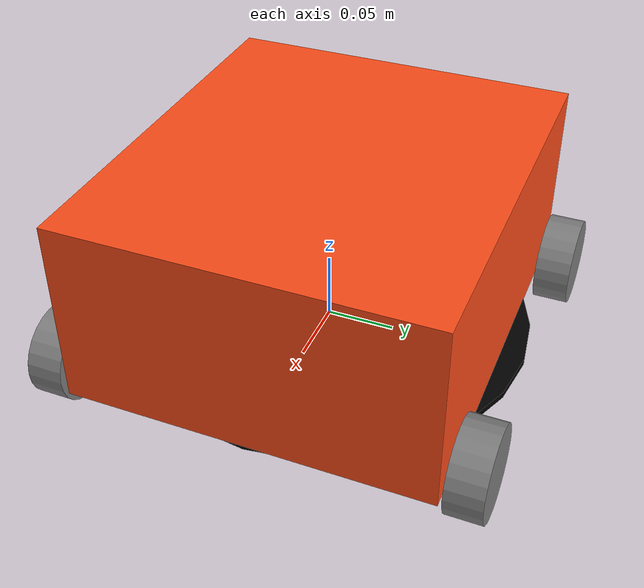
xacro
<?xml version="1.0"?>
<robot xmlns:xacro="http://www.ros.org/wiki/xacro" >

    <xacro:include filename="inertial_macros.xacro"/>
    <xacro:include filename="common_macros.xacro"/>

    <xacro:property name="chassis_length" value="0.300"/>
    <xacro:property name="chassis_width" value="0.265"/>
    <xacro:property name="chassis_height" value="0.138"/>
    <xacro:property name="chassis_mass" value="1.0"/>
    <xacro:property name="wheel_radius" value="0.033"/>
    <xacro:property name="wheel_thickness" value="0.026"/>
    <xacro:property name="wheel_width" value="${wheel_thickness}"/>
    <!-- backward-compatible alias expected by common_macros.xacro -->
    <xacro:property name="wheel_mass" value="0.05"/>
    <xacro:property name="wheel_offset_x" value="0.12"/>
    <xacro:property name="wheel_offset_y" value="0.1485"/>
    <xacro:property name="wheel_offset_z" value="0.01"/>
    <xacro:property name="caster_wheel_radius" value="0.01"/>
    <xacro:property name="caster_wheel_mass" value="0.01"/>
    <xacro:property name="caster_wheel_offset_x" value="0.075"/>
    <xacro:property name="caster_wheel_offset_z" value="${wheel_offset_z - wheel_radius + caster_wheel_radius}"/>
    <!-- turtlebot design -->
    <xacro:property name="bottom_plate_radius" value="0.15"/>
    <xacro:property name="bottom_plate_height" value="0.005"/>
    <xacro:property name="bottom_plate_mass" value="0.1"/>

    <material name="white">
        <color rgba="1 1 1 1" />
    </material>

    <material name="orange">
        <color rgba="1 0.3 0.1 1"/>
    </material>

    <material name="blue">
        <color rgba="0.2 0.2 1 1"/>
    </material>

    <material name="grey">
        <color rgba="0.5 0.5 0.5 1"/>
    </material>

    <material name="black">
        <color rgba="0 0 0 1"/>
    </material>

    <material name="red">
        <color rgba="1 0 0 1"/>
    </material>

    <!-- BASE LINK -->

    <link name="base_link">

    </link>

    <!-- CHASSIS LINK -->
    <joint name="chassis_joint" type="fixed">
        <parent link="base_link"/>
        <child link="chassis"/>
        <origin xyz="0 0 0" rpy="0 0 0"/>
    </joint>
    <link name="chassis">
        <visual>
            <origin xyz="0 0 ${chassis_height/2}"/>
            <geometry>
                <box size="${chassis_length} ${chassis_width} ${chassis_height}"/>
            </geometry>
            <material name="orange"/>
        </visual>
        <collision>
            <origin xyz="0 0 ${chassis_height/2}"/>
            <geometry>
                <box size="${chassis_length} ${chassis_width} ${chassis_height}"/>
            </geometry>
        </collision>
        <xacro:inertial_box mass="0.5" x="${chassis_length}" y="${chassis_width}" z="${chassis_height}">
            <origin xyz="${chassis_length/2} 0 ${chassis_height/2}" rpy="0 0 0"/>
        </xacro:inertial_box>
    </link>

    <gazebo reference="chassis">
        <material>Gazebo/Orange</material>
    </gazebo>

    <joint name="bottom_plate_joint" type="fixed">
        <parent link="chassis"/>
        <child link="bottom_plate"/>
        <origin xyz="0 0 0" rpy="0 0 0"/>
    </joint>

    <link name="bottom_plate">
        <visual>
            <geometry>
                <cylinder radius="${bottom_plate_radius}" length="${bottom_plate_height}"/>
            </geometry>
            <material name="black"/>
        </visual>
        <collision>
            <geometry>
                <cylinder radius="${bottom_plate_radius}" length="${bottom_plate_height}"/>
            </geometry>
        </collision>
        <xacro:inertial_cylinder mass="${bottom_plate_mass}" length="${bottom_plate_height}" radius="${bottom_plate_radius}">
            <origin xyz="0 0 0" rpy="0 0 0"/>
        </xacro:inertial_cylinder>
    </link>

    <gazebo reference="bottom_plate">
        <material>Gazebo/Black</material>
    </gazebo>
    <!-- LEFT WHEEL LINK -->

    <!-- RIGHT WHEEL LINK -->

<xacro:create_wheel name="front_left_wheel"  x_offset="${wheel_offset_x}" y_offset="${wheel_offset_y}"/>
<xacro:create_wheel name="front_right_wheel" x_offset="${wheel_offset_x}" y_offset="-${wheel_offset_y}"/>
<xacro:create_wheel name="rear_left_wheel"   x_offset="-${wheel_offset_x}" y_offset="${wheel_offset_y}"/>
<xacro:create_wheel name="rear_right_wheel"  x_offset="-${wheel_offset_x}" y_offset="-${wheel_offset_y}"/>

    <!-- CASTER WHEEL LINK -->

</robot>

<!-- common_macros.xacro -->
<robot xmlns:xacro="http://www.ros.org/wiki/xacro">

    <xacro:macro name="create_wheel" params="name x_offset y_offset">
        <link name="${name}">
            <visual>
                <geometry>
                    <cylinder radius="${wheel_radius}" length="${wheel_width}"/>
                </geometry>
                <material name="grey"/>
            </visual>
            <collision>
                <geometry>
                    <cylinder radius="${wheel_radius}" length="${wheel_width}"/>
                </geometry>
            </collision>
            <inertial>
                <mass value="${wheel_mass}"/>
                <inertia ixx="${(wheel_mass/12) * (3*wheel_radius*wheel_radius + wheel_width*wheel_width)}" ixy="0.0" ixz="0.0"
                         iyy="${(wheel_mass/12) * (3*wheel_radius*wheel_radius + wheel_width*wheel_width)}" iyz="0.0"
                         izz="${(wheel_mass/2) * (wheel_radius*wheel_radius)}"/>
            </inertial>
        </link>

        <joint name="${name}_joint" type="continuous">
            <parent link="chassis"/>
            <child link="${name}"/>
            <origin xyz="${x_offset} ${y_offset} ${wheel_offset_z}" rpy="-${pi/2} 0 0"/>
            <axis xyz="0 0 1"/>
        </joint>
    </xacro:macro>

</robot>
